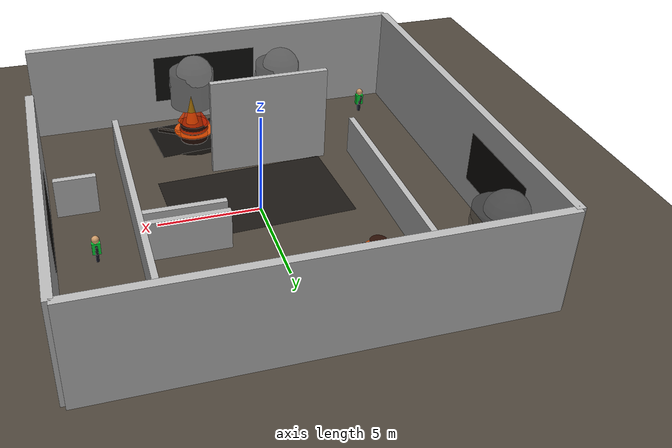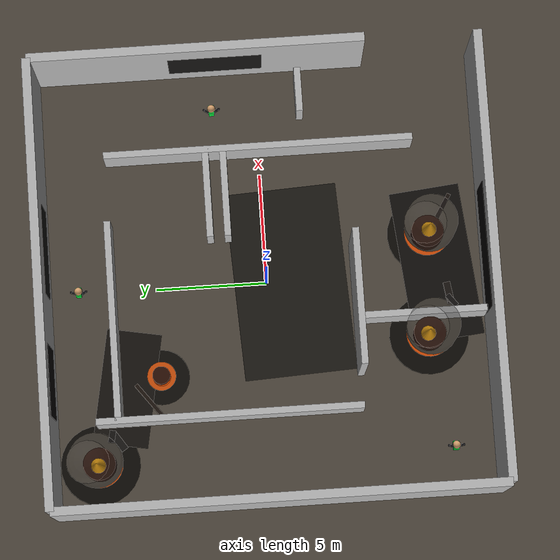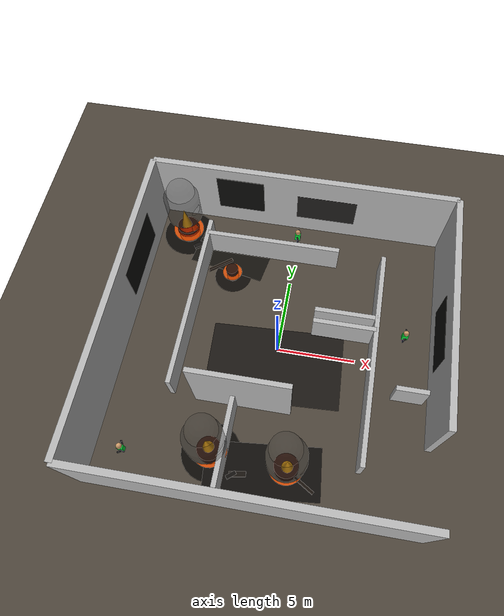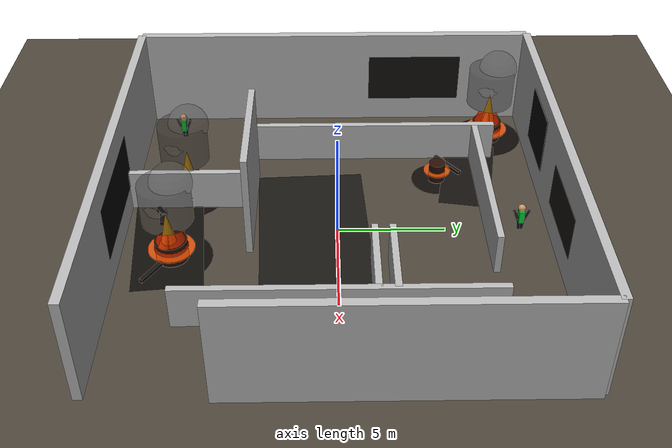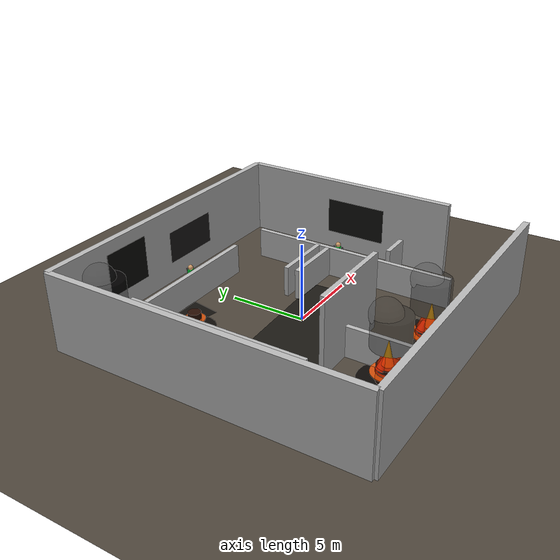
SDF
<?xml version="1.0" ?>
<sdf version="1.8">
    <world name="complex_maze_large">
        <physics name="1ms" type="ignored">
            <max_step_size>0.001</max_step_size>
            <real_time_factor>1.0</real_time_factor>
        </physics>

        <plugin name="gz::sim::systems::Physics" filename="gz-sim-physics-system"/>
        <plugin name="gz::sim::systems::UserCommands" filename="gz-sim-user-commands-system"/>
        <plugin name="gz::sim::systems::SceneBroadcaster" filename="gz-sim-scene-broadcaster-system"/>
        <plugin name="gz::sim::systems::ParticleEmitter" filename="gz-sim-particle-emitter-system"/>

        <plugin name="gz::sim::systems::Thermal" filename="gz-sim-thermal-system"/>

        <plugin name="gz::sim::systems::Sensors" filename="gz-sim-sensors-system">
            <render_engine>ogre2</render_engine>
        </plugin>
        <plugin name="gz::sim::systems::Imu" filename="gz-sim-imu-system"/>

        <light type="directional" name="sun">
            <pose>0 0 20 0 0 0</pose>
            <diffuse>0.55 0.42 0.32 1</diffuse>
            <specular>0.5 0.24 0.08 1</specular>
            <direction>-0.5 0.1 -0.9</direction>
        </light>

        <scene>
            <ambient>0.22 0.18 0.16 1</ambient>
            <background>0.08 0.07 0.06 1</background>
            <shadows>true</shadows>
        </scene>

        <model name="ground_plane">
            <static>true</static>
            <link name="link">
                <collision name="c">
                    <geometry>
                        <plane>
                            <normal>0 0 1</normal>
                        </plane>
                    </geometry>
                </collision>
                <visual name="v">
                    <geometry>
                        <plane>
                            <normal>0 0 1</normal>
                        </plane>
                    </geometry>
                    <material>
                        <ambient>0.18 0.16 0.14 1</ambient>
                        <diffuse>0.30 0.27 0.23 1</diffuse>
                    </material>
                </visual>
            </link>
        </model>

        <model name="border_N">
            <static>true</static>
            <pose>0 10 2.5 0 0 0</pose>
            <link name="l">
                <visual name="v">
                    <geometry>
                        <box>
                            <size>20 0.4 5</size>
                        </box>
                    </geometry>
                </visual>
                <collision name="c">
                    <geometry>
                        <box>
                            <size>20 0.4 5</size>
                        </box>
                    </geometry>
                </collision>
            </link>
        </model>

        <model name="border_S">
            <static>true</static>
            <pose>0 -10 2.5 0 0 0</pose>
            <link name="l">
                <visual name="v">
                    <geometry>
                        <box>
                            <size>20 0.4 5</size>
                        </box>
                    </geometry>
                </visual>
                <collision name="c">
                    <geometry>
                        <box>
                            <size>20 0.4 5</size>
                        </box>
                    </geometry>
                </collision>
            </link>
        </model>

        <model name="border_W">
            <static>true</static>
            <pose>-10 0 2.5 0 0 0</pose>
            <link name="l">
                <visual name="v">
                    <geometry>
                        <box>
                            <size>0.4 20 5</size>
                        </box>
                    </geometry>
                </visual>
                <collision name="c">
                    <geometry>
                        <box>
                            <size>0.4 20 5</size>
                        </box>
                    </geometry>
                </collision>
            </link>
        </model>

        <model name="border_E">
            <static>true</static>
            <pose>10 2.5 2.5 0 0 0</pose>
            <link name="l">
                <visual name="v">
                    <geometry>
                        <box>
                            <size>0.4 15 5</size>
                        </box>
                    </geometry>
                </visual>
                <collision name="c">
                    <geometry>
                        <box>
                            <size>0.4 15 5</size>
                        </box>
                    </geometry>
                </collision>
            </link>
        </model>

        <model name="wall_v1">
            <static>true</static>
            <pose>-6 2 1 0 0 0</pose>
            <link name="l">
                <visual name="v">
                    <geometry>
                        <box>
                            <size>0.3 12 2</size>
                        </box>
                    </geometry>
                </visual>
                <collision name="c">
                    <geometry>
                        <box>
                            <size>0.3 12 2</size>
                        </box>
                    </geometry>
                </collision>
            </link>
        </model>

        <model name="wall_v2">
            <static>true</static>
            <pose>-2 -7 1 0 0 0</pose>
            <link name="l">
                <visual name="v">
                    <geometry>
                        <box>
                            <size>0.3 6 2</size>
                        </box>
                    </geometry>
                </visual>
                <collision name="c">
                    <geometry>
                        <box>
                            <size>0.3 6 2</size>
                        </box>
                    </geometry>
                </collision>
            </link>
        </model>

        <model name="wall_v3">
            <static>true</static>
            <pose>6 0 1 0 0 0</pose>
            <link name="l">
                <visual name="v">
                    <geometry>
                        <box>
                            <size>0.3 14 2</size>
                        </box>
                    </geometry>
                </visual>
                <collision name="c">
                    <geometry>
                        <box>
                            <size>0.3 14 2</size>
                        </box>
                    </geometry>
                </collision>
            </link>
        </model>

        <model name="wall_h1">
            <static>true</static>
            <pose>-1.5 7 1 0 0 0</pose>
            <link name="l">
                <visual name="v">
                    <geometry>
                        <box>
                            <size>9 0.3 2</size>
                        </box>
                    </geometry>
                </visual>
                <collision name="c">
                    <geometry>
                        <box>
                            <size>9 0.3 2</size>
                        </box>
                    </geometry>
                </collision>
            </link>
        </model>

        <model name="wall_h2">
            <static>true</static>
            <pose>-1.5 -4 2.5 0 0 0</pose>
            <link name="l">
                <visual name="v">
                    <geometry>
                        <box>
                            <size>6 0.3 5</size>
                        </box>
                    </geometry>
                </visual>
                <collision name="c">
                    <geometry>
                        <box>
                            <size>6 0.3 5</size>
                        </box>
                    </geometry>
                </collision>
            </link>
        </model>

        <model name="wall_h3">
            <static>true</static>
            <pose>8.5 -2 1 0 0 0</pose>
            <link name="l">
                <visual name="v">
                    <geometry>
                        <box>
                            <size>2 0.3 2</size>
                        </box>
                    </geometry>
                </visual>
                <collision name="c">
                    <geometry>
                        <box>
                            <size>2 0.3 2</size>
                        </box>
                    </geometry>
                </collision>
            </link>
        </model>

        <model name="narrow_path_N">
            <static>true</static>
            <pose>4 2.4 1 0 0 0</pose>
            <link name="l">
                <visual name="v">
                    <geometry>
                        <box>
                            <size>4 0.3 2</size>
                        </box>
                    </geometry>
                </visual>
                <collision name="c">
                    <geometry>
                        <box>
                            <size>4 0.3 2</size>
                        </box>
                    </geometry>
                </collision>
            </link>
        </model>

        <model name="narrow_path_S">
            <static>true</static>
            <pose>4 1.6 1 0 0 0</pose>
            <link name="l">
                <visual name="v">
                    <geometry>
                        <box>
                            <size>4 0.3 2</size>
                        </box>
                    </geometry>
                </visual>
                <collision name="c">
                    <geometry>
                        <box>
                            <size>4 0.3 2</size>
                        </box>
                    </geometry>
                </collision>
            </link>
        </model>

        <model name="green_survivor_1">
            <static>true</static>
            <pose>-8 -8 0.5 0 0 0</pose>
            <link name="link">
                <visual name="head">
                    <pose>0 0 0.72 0 0 0</pose>
                    <geometry>
                        <sphere><radius>0.18</radius></sphere>
                    </geometry>
                    <material>
                        <ambient>0.74 0.52 0.34 1</ambient>
                        <diffuse>0.82 0.62 0.42 1</diffuse>
                    </material>
                </visual>
                <visual name="torso">
                    <pose>0 0 0.28 0 0 0</pose>
                    <geometry>
                        <box><size>0.38 0.24 0.58</size></box>
                    </geometry>
                    <material>
                        <ambient>0.02 0.65 0.18 1</ambient>
                        <diffuse>0.03 0.85 0.22 1</diffuse>
                    </material>
                </visual>
                <visual name="left_arm">
                    <pose>0 -0.24 0.30 0.35 0 0</pose>
                    <geometry>
                        <cylinder><radius>0.055</radius><length>0.58</length></cylinder>
                    </geometry>
                    <material>
                        <ambient>0.07 0.07 0.08 1</ambient>
                        <diffuse>0.11 0.11 0.12 1</diffuse>
                    </material>
                </visual>
                <visual name="right_arm">
                    <pose>0 0.24 0.30 -0.35 0 0</pose>
                    <geometry>
                        <cylinder><radius>0.055</radius><length>0.58</length></cylinder>
                    </geometry>
                    <material>
                        <ambient>0.07 0.07 0.08 1</ambient>
                        <diffuse>0.11 0.11 0.12 1</diffuse>
                    </material>
                </visual>
                <visual name="left_leg">
                    <pose>0 -0.09 -0.12 0.12 0 0</pose>
                    <geometry>
                        <cylinder><radius>0.07</radius><length>0.62</length></cylinder>
                    </geometry>
                    <material>
                        <ambient>0.05 0.06 0.09 1</ambient>
                        <diffuse>0.07 0.08 0.13 1</diffuse>
                    </material>
                </visual>
                <visual name="right_leg">
                    <pose>0 0.09 -0.12 -0.12 0 0</pose>
                    <geometry>
                        <cylinder><radius>0.07</radius><length>0.62</length></cylinder>
                    </geometry>
                    <material>
                        <ambient>0.05 0.06 0.09 1</ambient>
                        <diffuse>0.07 0.08 0.13 1</diffuse>
                    </material>
                </visual>
                <collision name="c">
                    <geometry>
                        <box><size>0.8 0.8 1.0</size></box>
                    </geometry>
                </collision>
            </link>
            <plugin filename="gz-sim-thermal-system" name="gz::sim::systems::Thermal"><temperature>310.0</temperature></plugin>
        </model>

        <model name="green_survivor_2">
            <static>true</static>
            <pose>0 8.5 0.5 0 0 0</pose>
            <link name="link">
                <visual name="head">
                    <pose>0 0 0.72 0 0 0</pose>
                    <geometry>
                        <sphere><radius>0.18</radius></sphere>
                    </geometry>
                    <material>
                        <ambient>0.74 0.52 0.34 1</ambient>
                        <diffuse>0.82 0.62 0.42 1</diffuse>
                    </material>
                </visual>
                <visual name="torso">
                    <pose>0 0 0.28 0 0 0</pose>
                    <geometry>
                        <box><size>0.38 0.24 0.58</size></box>
                    </geometry>
                    <material>
                        <ambient>0.02 0.65 0.18 1</ambient>
                        <diffuse>0.03 0.85 0.22 1</diffuse>
                    </material>
                </visual>
                <visual name="left_arm">
                    <pose>0 -0.24 0.30 0.35 0 0</pose>
                    <geometry>
                        <cylinder><radius>0.055</radius><length>0.58</length></cylinder>
                    </geometry>
                    <material>
                        <ambient>0.07 0.07 0.08 1</ambient>
                        <diffuse>0.11 0.11 0.12 1</diffuse>
                    </material>
                </visual>
                <visual name="right_arm">
                    <pose>0 0.24 0.30 -0.35 0 0</pose>
                    <geometry>
                        <cylinder><radius>0.055</radius><length>0.58</length></cylinder>
                    </geometry>
                    <material>
                        <ambient>0.07 0.07 0.08 1</ambient>
                        <diffuse>0.11 0.11 0.12 1</diffuse>
                    </material>
                </visual>
                <visual name="left_leg">
                    <pose>0 -0.09 -0.12 0.12 0 0</pose>
                    <geometry>
                        <cylinder><radius>0.07</radius><length>0.62</length></cylinder>
                    </geometry>
                    <material>
                        <ambient>0.05 0.06 0.09 1</ambient>
                        <diffuse>0.07 0.08 0.13 1</diffuse>
                    </material>
                </visual>
                <visual name="right_leg">
                    <pose>0 0.09 -0.12 -0.12 0 0</pose>
                    <geometry>
                        <cylinder><radius>0.07</radius><length>0.62</length></cylinder>
                    </geometry>
                    <material>
                        <ambient>0.05 0.06 0.09 1</ambient>
                        <diffuse>0.07 0.08 0.13 1</diffuse>
                    </material>
                </visual>
                <collision name="c">
                    <geometry>
                        <box><size>0.8 0.8 1.0</size></box>
                    </geometry>
                </collision>
            </link>
            <plugin filename="gz-sim-thermal-system" name="gz::sim::systems::Thermal"><temperature>310.0</temperature></plugin>
        </model>

        <model name="green_survivor_3">
            <static>true</static>
            <pose>8 2 0.5 0 0 0</pose>
            <link name="link">
                <visual name="head">
                    <pose>0 0 0.72 0 0 0</pose>
                    <geometry>
                        <sphere><radius>0.18</radius></sphere>
                    </geometry>
                    <material>
                        <ambient>0.74 0.52 0.34 1</ambient>
                        <diffuse>0.82 0.62 0.42 1</diffuse>
                    </material>
                </visual>
                <visual name="torso">
                    <pose>0 0 0.28 0 0 0</pose>
                    <geometry>
                        <box><size>0.38 0.24 0.58</size></box>
                    </geometry>
                    <material>
                        <ambient>0.02 0.65 0.18 1</ambient>
                        <diffuse>0.03 0.85 0.22 1</diffuse>
                    </material>
                </visual>
                <visual name="left_arm">
                    <pose>0 -0.24 0.30 0.35 0 0</pose>
                    <geometry>
                        <cylinder><radius>0.055</radius><length>0.58</length></cylinder>
                    </geometry>
                    <material>
                        <ambient>0.07 0.07 0.08 1</ambient>
                        <diffuse>0.11 0.11 0.12 1</diffuse>
                    </material>
                </visual>
                <visual name="right_arm">
                    <pose>0 0.24 0.30 -0.35 0 0</pose>
                    <geometry>
                        <cylinder><radius>0.055</radius><length>0.58</length></cylinder>
                    </geometry>
                    <material>
                        <ambient>0.07 0.07 0.08 1</ambient>
                        <diffuse>0.11 0.11 0.12 1</diffuse>
                    </material>
                </visual>
                <visual name="left_leg">
                    <pose>0 -0.09 -0.12 0.12 0 0</pose>
                    <geometry>
                        <cylinder><radius>0.07</radius><length>0.62</length></cylinder>
                    </geometry>
                    <material>
                        <ambient>0.05 0.06 0.09 1</ambient>
                        <diffuse>0.07 0.08 0.13 1</diffuse>
                    </material>
                </visual>
                <visual name="right_leg">
                    <pose>0 0.09 -0.12 -0.12 0 0</pose>
                    <geometry>
                        <cylinder><radius>0.07</radius><length>0.62</length></cylinder>
                    </geometry>
                    <material>
                        <ambient>0.05 0.06 0.09 1</ambient>
                        <diffuse>0.07 0.08 0.13 1</diffuse>
                    </material>
                </visual>
                <collision name="c">
                    <geometry>
                        <box><size>0.8 0.8 1.0</size></box>
                    </geometry>
                </collision>
            </link>
            <plugin filename="gz-sim-thermal-system" name="gz::sim::systems::Thermal"><temperature>310.0</temperature></plugin>
        </model>

        <model name="red_danger1">
            <static>true</static>
            <pose>-4 5 0.5 0 0 0</pose>
            <link name="link">
                <visual name="v">
                    <geometry>
                        <cylinder>
                            <radius>0.4</radius>
                            <length>1.0</length>
                        </cylinder>
                    </geometry>
                    <material>
                        <ambient>0.08 0.025 0.010 1</ambient>
                        <diffuse>0.16 0.055 0.018 1</diffuse>
                        <emissive>0.28 0.060 0.015 1</emissive>
                    </material>
                </visual>
                <visual name="ember_glow">
                    <pose>0 0 0.05 0 0 0</pose>
                    <geometry>
                        <cylinder>
                            <radius>0.65</radius>
                            <length>0.06</length>
                        </cylinder>
                    </geometry>
                    <material>
                        <ambient>1 0.26 0.02 0.75</ambient>
                        <diffuse>1 0.36 0.02 0.75</diffuse>
                        <emissive>1 0.24 0.02 1</emissive>
                    </material>
                </visual>
                <visual name="ember_hotspot_a">
                    <pose>0.18 0.10 0.18 0 0 0</pose>
                    <geometry>
                        <sphere>
                            <radius>0.12</radius>
                        </sphere>
                    </geometry>
                    <material>
                        <ambient>1 0.42 0.035 1</ambient>
                        <diffuse>1 0.32 0.020 1</diffuse>
                        <emissive>1 0.22 0.010 1</emissive>
                    </material>
                </visual>
                <visual name="ember_hotspot_b">
                    <pose>-0.20 -0.08 0.16 0 0 0</pose>
                    <geometry>
                        <sphere>
                            <radius>0.10</radius>
                        </sphere>
                    </geometry>
                    <material>
                        <ambient>1 0.24 0.015 1</ambient>
                        <diffuse>1 0.18 0.010 1</diffuse>
                        <emissive>1 0.10 0.005 1</emissive>
                    </material>
                </visual>
                <collision name="c">
                    <geometry>
                        <cylinder>
                            <radius>0.4</radius>
                            <length>1.0</length>
                        </cylinder>
                    </geometry>
                </collision>
            </link>
            <plugin filename="gz-sim-thermal-system" name="gz::sim::systems::Thermal"><temperature>1200.0</temperature></plugin>
        </model>

        <model name="red_danger2">
            <static>true</static>
            <pose>-7.8 8 0.5 0 0 0</pose>
            <link name="link">
                <visual name="v">
                    <geometry>
                        <cylinder>
                            <radius>0.73</radius>
                            <length>1.0</length>
                        </cylinder>
                    </geometry>
                    <material>
                        <ambient>0.08 0.025 0.010 1</ambient>
                        <diffuse>0.16 0.055 0.018 1</diffuse>
                        <emissive>0.28 0.060 0.015 1</emissive>
                    </material>
                </visual>
                <visual name="ember_glow">
                    <pose>0 0 0.05 0 0 0</pose>
                    <geometry>
                        <cylinder>
                            <radius>1.05</radius>
                            <length>0.06</length>
                        </cylinder>
                    </geometry>
                    <material>
                        <ambient>1 0.24 0.02 0.78</ambient>
                        <diffuse>1 0.35 0.02 0.78</diffuse>
                        <emissive>1 0.22 0.02 1</emissive>
                    </material>
                </visual>
                <visual name="ember_hotspot_a">
                    <pose>0.18 0.10 0.18 0 0 0</pose>
                    <geometry>
                        <sphere>
                            <radius>0.12</radius>
                        </sphere>
                    </geometry>
                    <material>
                        <ambient>1 0.42 0.035 1</ambient>
                        <diffuse>1 0.32 0.020 1</diffuse>
                        <emissive>1 0.22 0.010 1</emissive>
                    </material>
                </visual>
                <visual name="ember_hotspot_b">
                    <pose>-0.20 -0.08 0.16 0 0 0</pose>
                    <geometry>
                        <sphere>
                            <radius>0.10</radius>
                        </sphere>
                    </geometry>
                    <material>
                        <ambient>1 0.24 0.015 1</ambient>
                        <diffuse>1 0.18 0.010 1</diffuse>
                        <emissive>1 0.10 0.005 1</emissive>
                    </material>
                </visual>
                <visual name="flame_outer">
                    <transparency>0.18</transparency>
                    <pose>0 0 1.25 0 0 0</pose>
                    <geometry>
                        <cone>
                            <radius>0.78</radius>
                            <length>2.2</length>
                        </cone>
                    </geometry>
                    <material>
                        <ambient>1 0.16 0.01 0.84</ambient>
                        <diffuse>1 0.24 0.02 0.84</diffuse>
                        <emissive>1 0.14 0.01 1</emissive>
                    </material>
                </visual>
                <visual name="flame_inner">
                    <transparency>0.05</transparency>
                    <pose>-0.08 0.04 1.22 0 0 0</pose>
                    <geometry>
                        <cone>
                            <radius>0.36</radius>
                            <length>1.65</length>
                        </cone>
                    </geometry>
                    <material>
                        <ambient>1 0.82 0.10 0.92</ambient>
                        <diffuse>1 0.68 0.04 0.92</diffuse>
                        <emissive>1 0.58 0.04 1</emissive>
                    </material>
                </visual>
                <visual name="flame_left">
                    <transparency>0.12</transparency>
                    <pose>-0.33 0.12 1.02 0.18 0.35 0</pose>
                    <geometry>
                        <cone>
                            <radius>0.30</radius>
                            <length>1.35</length>
                        </cone>
                    </geometry>
                    <material>
                        <ambient>1 0.10 0.01 0.95</ambient>
                        <diffuse>1 0.20 0.02 0.95</diffuse>
                        <emissive>1 0.12 0.01 1</emissive>
                    </material>
                </visual>
                <visual name="flame_right">
                    <transparency>0.12</transparency>
                    <pose>0.36 -0.10 1.08 -0.18 -0.30 0</pose>
                    <geometry>
                        <cone>
                            <radius>0.27</radius>
                            <length>1.25</length>
                        </cone>
                    </geometry>
                    <material>
                        <ambient>1 0.36 0.02 0.95</ambient>
                        <diffuse>1 0.28 0.02 0.95</diffuse>
                        <emissive>1 0.18 0.01 1</emissive>
                    </material>
                </visual>
                <visual name="flame_core_white">
                    <transparency>0.08</transparency>
                    <pose>0.02 0.02 0.78 0 0 0</pose>
                    <geometry>
                        <cone>
                            <radius>0.16</radius>
                            <length>1.05</length>
                        </cone>
                    </geometry>
                    <material>
                        <ambient>1 0.95 0.42 0.96</ambient>
                        <diffuse>1 0.88 0.25 0.96</diffuse>
                        <emissive>1 0.78 0.12 1</emissive>
                    </material>
                </visual>
                <visual name="flame_tip">
                    <transparency>0.16</transparency>
                    <pose>-0.05 0.03 1.58 0.08 -0.18 0</pose>
                    <geometry>
                        <cone>
                            <radius>0.18</radius>
                            <length>0.85</length>
                        </cone>
                    </geometry>
                    <material>
                        <ambient>1 0.48 0.03 0.88</ambient>
                        <diffuse>1 0.34 0.02 0.88</diffuse>
                        <emissive>1 0.22 0.01 1</emissive>
                    </material>
                </visual>
                <visual name="flame_lip_front">
                    <transparency>0.18</transparency>
                    <pose>0.16 -0.20 0.58 -0.42 0.18 0</pose>
                    <geometry>
                        <cone>
                            <radius>0.18</radius>
                            <length>0.78</length>
                        </cone>
                    </geometry>
                    <material>
                        <ambient>1 0.20 0.015 0.86</ambient>
                        <diffuse>1 0.16 0.010 0.86</diffuse>
                        <emissive>1 0.10 0.006 1</emissive>
                    </material>
                </visual>
                <visual name="smoke_column">
                    <transparency>0.70</transparency>
                    <pose>0 0 2.65 0 0 0</pose>
                    <geometry>
                        <cylinder>
                            <radius>1.15</radius>
                            <length>1.9</length>
                        </cylinder>
                    </geometry>
                    <material>
                        <ambient>0.055 0.055 0.055 1</ambient>
                        <diffuse>0.085 0.085 0.085 1</diffuse>
                    </material>
                </visual>
                <visual name="smoke_puff_low">
                    <transparency>0.72</transparency>
                    <pose>-0.22 0.16 2.12 0 0 0</pose>
                    <geometry>
                        <sphere>
                            <radius>0.68</radius>
                        </sphere>
                    </geometry>
                    <material>
                        <ambient>0.12 0.12 0.12 1</ambient>
                        <diffuse>0.16 0.16 0.16 1</diffuse>
                    </material>
                </visual>
                <visual name="smoke_puff_mid">
                    <transparency>0.76</transparency>
                    <pose>0.36 -0.12 2.85 0 0 0</pose>
                    <geometry>
                        <sphere>
                            <radius>0.82</radius>
                        </sphere>
                    </geometry>
                    <material>
                        <ambient>0.09 0.09 0.09 1</ambient>
                        <diffuse>0.13 0.13 0.13 1</diffuse>
                    </material>
                </visual>
                <visual name="smoke_puff_high">
                    <transparency>0.80</transparency>
                    <pose>-0.10 0.30 3.55 0 0 0</pose>
                    <geometry>
                        <sphere>
                            <radius>0.95</radius>
                        </sphere>
                    </geometry>
                    <material>
                        <ambient>0.15 0.15 0.15 1</ambient>
                        <diffuse>0.20 0.20 0.20 1</diffuse>
                    </material>
                </visual>
                <particle_emitter name="smoke_plume" type="box">
                    <pose>0 0 1.75 0 -1.5707 0</pose>
                    <emitting>true</emitting>
                    <size>1.15 1.15 0.38</size>
                    <particle_size>1.15 1.15 1.15</particle_size>
                    <lifetime>10.5</lifetime>
                    <min_velocity>0.16</min_velocity>
                    <max_velocity>0.78</max_velocity>
                    <scale_rate>0.58</scale_rate>
                    <rate>20</rate>
                    <material>
                        <diffuse>0.7 0.7 0.7 1</diffuse>
                        <specular>0.2 0.2 0.2 1</specular>
                        <pbr>
                            <metal>
                                <albedo_map>/home/seoeunbi/ros2/Track-Be/maps/materials/textures/smoke_particle.png</albedo_map>
                            </metal>
                        </pbr>
                    </material>
                    <color_range_image>/home/seoeunbi/ros2/Track-Be/maps/materials/textures/smoke_colors.png</color_range_image>
                    <particle_scatter_ratio>0.98</particle_scatter_ratio>
                </particle_emitter>
                <particle_emitter name="smoke_canopy" type="ellipsoid">
                    <pose>0.2 -0.1 3.25 0 -1.5707 0</pose>
                    <emitting>true</emitting>
                    <size>2.2 2.2 0.85</size>
                    <particle_size>1.5 1.5 1.5</particle_size>
                    <lifetime>13.0</lifetime>
                    <min_velocity>0.05</min_velocity>
                    <max_velocity>0.30</max_velocity>
                    <scale_rate>0.48</scale_rate>
                    <rate>8</rate>
                    <material>
                        <diffuse>0.7 0.7 0.7 1</diffuse>
                        <specular>0.2 0.2 0.2 1</specular>
                        <pbr>
                            <metal>
                                <albedo_map>/home/seoeunbi/ros2/Track-Be/maps/materials/textures/smoke_particle.png</albedo_map>
                            </metal>
                        </pbr>
                    </material>
                    <color_range_image>/home/seoeunbi/ros2/Track-Be/maps/materials/textures/smoke_colors.png</color_range_image>
                    <particle_scatter_ratio>0.94</particle_scatter_ratio>
                </particle_emitter>
                <collision name="c"><geometry><cylinder><radius>0.73</radius><length>1.0</length></cylinder></geometry></collision>
            </link>
            <plugin filename="gz-sim-thermal-system" name="gz::sim::systems::Thermal"><temperature>1200.0</temperature></plugin>
        </model>

        <model name="red_danger3">
            <static>true</static><pose>1.77 -7.44 0.5 0 0 0</pose>
            <link name="link">
                <visual name="v">
                    <geometry>
                        <cylinder>
                            <radius>0.73</radius>
                            <length>1.0</length>
                        </cylinder>
                    </geometry>
                    <material>
                        <ambient>0.08 0.025 0.010 1</ambient>
                        <diffuse>0.16 0.055 0.018 1</diffuse>
                        <emissive>0.28 0.060 0.015 1</emissive>
                    </material>
                </visual>
                <visual name="ember_glow">
                    <pose>0 0 0.05 0 0 0</pose>
                    <geometry>
                        <cylinder>
                            <radius>1.05</radius>
                            <length>0.06</length>
                        </cylinder>
                    </geometry>
                    <material>
                        <ambient>1 0.24 0.02 0.78</ambient>
                        <diffuse>1 0.35 0.02 0.78</diffuse>
                        <emissive>1 0.22 0.02 1</emissive>
                    </material>
                </visual>
                <visual name="ember_hotspot_a">
                    <pose>0.18 0.10 0.18 0 0 0</pose>
                    <geometry>
                        <sphere>
                            <radius>0.12</radius>
                        </sphere>
                    </geometry>
                    <material>
                        <ambient>1 0.42 0.035 1</ambient>
                        <diffuse>1 0.32 0.020 1</diffuse>
                        <emissive>1 0.22 0.010 1</emissive>
                    </material>
                </visual>
                <visual name="ember_hotspot_b">
                    <pose>-0.20 -0.08 0.16 0 0 0</pose>
                    <geometry>
                        <sphere>
                            <radius>0.10</radius>
                        </sphere>
                    </geometry>
                    <material>
                        <ambient>1 0.24 0.015 1</ambient>
                        <diffuse>1 0.18 0.010 1</diffuse>
                        <emissive>1 0.10 0.005 1</emissive>
                    </material>
                </visual>
                <visual name="flame_outer">
                    <transparency>0.18</transparency>
                    <pose>0 0 1.25 0 0 0</pose>
                    <geometry>
                        <cone>
                            <radius>0.78</radius>
                            <length>2.2</length>
                        </cone>
                    </geometry>
                    <material>
                        <ambient>1 0.16 0.01 0.84</ambient>
                        <diffuse>1 0.24 0.02 0.84</diffuse>
                        <emissive>1 0.14 0.01 1</emissive>
                    </material>
                </visual>
                <visual name="flame_inner">
                    <transparency>0.05</transparency>
                    <pose>0.07 -0.06 1.22 0 0 0</pose>
                    <geometry>
                        <cone>
                            <radius>0.36</radius>
                            <length>1.65</length>
                        </cone>
                    </geometry>
                    <material>
                        <ambient>1 0.82 0.10 0.92</ambient>
                        <diffuse>1 0.68 0.04 0.92</diffuse>
                        <emissive>1 0.58 0.04 1</emissive>
                    </material>
                </visual>
                <visual name="flame_left">
                    <transparency>0.12</transparency>
                    <pose>-0.33 0.12 1.02 0.18 0.35 0</pose>
                    <geometry>
                        <cone>
                            <radius>0.30</radius>
                            <length>1.35</length>
                        </cone>
                    </geometry>
                    <material>
                        <ambient>1 0.10 0.01 0.95</ambient>
                        <diffuse>1 0.20 0.02 0.95</diffuse>
                        <emissive>1 0.12 0.01 1</emissive>
                    </material>
                </visual>
                <visual name="flame_right">
                    <transparency>0.12</transparency>
                    <pose>0.36 -0.10 1.08 -0.18 -0.30 0</pose>
                    <geometry>
                        <cone>
                            <radius>0.27</radius>
                            <length>1.25</length>
                        </cone>
                    </geometry>
                    <material>
                        <ambient>1 0.36 0.02 0.95</ambient>
                        <diffuse>1 0.28 0.02 0.95</diffuse>
                        <emissive>1 0.18 0.01 1</emissive>
                    </material>
                </visual>
                <visual name="flame_core_white">
                    <transparency>0.08</transparency>
                    <pose>0.02 0.02 0.78 0 0 0</pose>
                    <geometry>
                        <cone>
                            <radius>0.16</radius>
                            <length>1.05</length>
                        </cone>
                    </geometry>
                    <material>
                        <ambient>1 0.95 0.42 0.96</ambient>
                        <diffuse>1 0.88 0.25 0.96</diffuse>
                        <emissive>1 0.78 0.12 1</emissive>
                    </material>
                </visual>
                <visual name="flame_tip">
                    <transparency>0.16</transparency>
                    <pose>-0.05 0.03 1.58 0.08 -0.18 0</pose>
                    <geometry>
                        <cone>
                            <radius>0.18</radius>
                            <length>0.85</length>
                        </cone>
                    </geometry>
                    <material>
                        <ambient>1 0.48 0.03 0.88</ambient>
                        <diffuse>1 0.34 0.02 0.88</diffuse>
                        <emissive>1 0.22 0.01 1</emissive>
                    </material>
                </visual>
                <visual name="flame_lip_front">
                    <transparency>0.18</transparency>
                    <pose>0.16 -0.20 0.58 -0.42 0.18 0</pose>
                    <geometry>
                        <cone>
                            <radius>0.18</radius>
                            <length>0.78</length>
                        </cone>
                    </geometry>
                    <material>
                        <ambient>1 0.20 0.015 0.86</ambient>
                        <diffuse>1 0.16 0.010 0.86</diffuse>
                        <emissive>1 0.10 0.006 1</emissive>
                    </material>
                </visual>
                <visual name="smoke_column">
                    <transparency>0.70</transparency>
                    <pose>0 0 2.65 0 0 0</pose>
                    <geometry>
                        <cylinder>
                            <radius>1.15</radius>
                            <length>1.9</length>
                        </cylinder>
                    </geometry>
                    <material>
                        <ambient>0.055 0.055 0.055 1</ambient>
                        <diffuse>0.085 0.085 0.085 1</diffuse>
                    </material>
                </visual>
                <visual name="smoke_puff_low">
                    <transparency>0.72</transparency>
                    <pose>-0.22 0.16 2.12 0 0 0</pose>
                    <geometry>
                        <sphere>
                            <radius>0.68</radius>
                        </sphere>
                    </geometry>
                    <material>
                        <ambient>0.12 0.12 0.12 1</ambient>
                        <diffuse>0.16 0.16 0.16 1</diffuse>
                    </material>
                </visual>
                <visual name="smoke_puff_mid">
                    <transparency>0.76</transparency>
                    <pose>0.36 -0.12 2.85 0 0 0</pose>
                    <geometry>
                        <sphere>
                            <radius>0.82</radius>
                        </sphere>
                    </geometry>
                    <material>
                        <ambient>0.09 0.09 0.09 1</ambient>
                        <diffuse>0.13 0.13 0.13 1</diffuse>
                    </material>
                </visual>
                <visual name="smoke_puff_high">
                    <transparency>0.80</transparency>
                    <pose>-0.10 0.30 3.55 0 0 0</pose>
                    <geometry>
                        <sphere>
                            <radius>0.95</radius>
                        </sphere>
                    </geometry>
                    <material>
                        <ambient>0.15 0.15 0.15 1</ambient>
                        <diffuse>0.20 0.20 0.20 1</diffuse>
                    </material>
                </visual>
                <particle_emitter name="smoke_plume" type="box">
                    <pose>0 0 1.75 0 -1.5707 0</pose>
                    <emitting>true</emitting>
                    <size>1.15 1.15 0.38</size>
                    <particle_size>1.15 1.15 1.15</particle_size>
                    <lifetime>10.5</lifetime>
                    <min_velocity>0.16</min_velocity>
                    <max_velocity>0.78</max_velocity>
                    <scale_rate>0.58</scale_rate>
                    <rate>20</rate>
                    <material>
                        <diffuse>0.7 0.7 0.7 1</diffuse>
                        <specular>0.2 0.2 0.2 1</specular>
                        <pbr>
                            <metal>
                                <albedo_map>/home/seoeunbi/ros2/Track-Be/maps/materials/textures/smoke_particle.png</albedo_map>
                            </metal>
                        </pbr>
                    </material>
                    <color_range_image>/home/seoeunbi/ros2/Track-Be/maps/materials/textures/smoke_colors.png</color_range_image>
                    <particle_scatter_ratio>0.98</particle_scatter_ratio>
                </particle_emitter>
                <particle_emitter name="smoke_canopy" type="ellipsoid">
                    <pose>0.2 -0.1 3.25 0 -1.5707 0</pose>
                    <emitting>true</emitting>
                    <size>2.2 2.2 0.85</size>
                    <particle_size>1.5 1.5 1.5</particle_size>
                    <lifetime>13.0</lifetime>
                    <min_velocity>0.05</min_velocity>
                    <max_velocity>0.30</max_velocity>
                    <scale_rate>0.48</scale_rate>
                    <rate>8</rate>
                    <material>
                        <diffuse>0.7 0.7 0.7 1</diffuse>
                        <specular>0.2 0.2 0.2 1</specular>
                        <pbr>
                            <metal>
                                <albedo_map>/home/seoeunbi/ros2/Track-Be/maps/materials/textures/smoke_particle.png</albedo_map>
                            </metal>
                        </pbr>
                    </material>
                    <color_range_image>/home/seoeunbi/ros2/Track-Be/maps/materials/textures/smoke_colors.png</color_range_image>
                    <particle_scatter_ratio>0.94</particle_scatter_ratio>
                </particle_emitter>
                <collision name="c"><geometry><cylinder><radius>0.73</radius><length>1.0</length></cylinder></geometry></collision>
            </link>
            <plugin filename="gz-sim-thermal-system" name="gz::sim::systems::Thermal"><temperature>1200.0</temperature></plugin>
        </model>

        <model name="red_danger4">
            <static>true</static><pose>-2.85 -7.21 0.5 0 0 0</pose>
            <link name="link">
                <visual name="v">
                    <geometry>
                        <cylinder>
                            <radius>0.73</radius>
                            <length>1.0</length>
                        </cylinder>
                    </geometry>
                    <material>
                        <ambient>0.08 0.025 0.010 1</ambient>
                        <diffuse>0.16 0.055 0.018 1</diffuse>
                        <emissive>0.28 0.060 0.015 1</emissive>
                    </material>
                </visual>
                <visual name="ember_glow">
                    <pose>0 0 0.05 0 0 0</pose>
                    <geometry>
                        <cylinder>
                            <radius>1.05</radius>
                            <length>0.06</length>
                        </cylinder>
                    </geometry>
                    <material>
                        <ambient>1 0.24 0.02 0.78</ambient>
                        <diffuse>1 0.35 0.02 0.78</diffuse>
                        <emissive>1 0.22 0.02 1</emissive>
                    </material>
                </visual>
                <visual name="ember_hotspot_a">
                    <pose>0.18 0.10 0.18 0 0 0</pose>
                    <geometry>
                        <sphere>
                            <radius>0.12</radius>
                        </sphere>
                    </geometry>
                    <material>
                        <ambient>1 0.42 0.035 1</ambient>
                        <diffuse>1 0.32 0.020 1</diffuse>
                        <emissive>1 0.22 0.010 1</emissive>
                    </material>
                </visual>
                <visual name="ember_hotspot_b">
                    <pose>-0.20 -0.08 0.16 0 0 0</pose>
                    <geometry>
                        <sphere>
                            <radius>0.10</radius>
                        </sphere>
                    </geometry>
                    <material>
                        <ambient>1 0.24 0.015 1</ambient>
                        <diffuse>1 0.18 0.010 1</diffuse>
                        <emissive>1 0.10 0.005 1</emissive>
                    </material>
                </visual>
                <visual name="flame_outer">
                    <transparency>0.18</transparency>
                    <pose>0 0 1.25 0 0 0</pose>
                    <geometry>
                        <cone>
                            <radius>0.78</radius>
                            <length>2.2</length>
                        </cone>
                    </geometry>
                    <material>
                        <ambient>1 0.16 0.01 0.84</ambient>
                        <diffuse>1 0.24 0.02 0.84</diffuse>
                        <emissive>1 0.14 0.01 1</emissive>
                    </material>
                </visual>
                <visual name="flame_inner">
                    <transparency>0.05</transparency>
                    <pose>-0.04 0.08 1.22 0 0 0</pose>
                    <geometry>
                        <cone>
                            <radius>0.36</radius>
                            <length>1.65</length>
                        </cone>
                    </geometry>
                    <material>
                        <ambient>1 0.82 0.10 0.92</ambient>
                        <diffuse>1 0.68 0.04 0.92</diffuse>
                        <emissive>1 0.58 0.04 1</emissive>
                    </material>
                </visual>
                <visual name="flame_left">
                    <transparency>0.12</transparency>
                    <pose>-0.33 0.12 1.02 0.18 0.35 0</pose>
                    <geometry>
                        <cone>
                            <radius>0.30</radius>
                            <length>1.35</length>
                        </cone>
                    </geometry>
                    <material>
                        <ambient>1 0.10 0.01 0.95</ambient>
                        <diffuse>1 0.20 0.02 0.95</diffuse>
                        <emissive>1 0.12 0.01 1</emissive>
                    </material>
                </visual>
                <visual name="flame_right">
                    <transparency>0.12</transparency>
                    <pose>0.36 -0.10 1.08 -0.18 -0.30 0</pose>
                    <geometry>
                        <cone>
                            <radius>0.27</radius>
                            <length>1.25</length>
                        </cone>
                    </geometry>
                    <material>
                        <ambient>1 0.36 0.02 0.95</ambient>
                        <diffuse>1 0.28 0.02 0.95</diffuse>
                        <emissive>1 0.18 0.01 1</emissive>
                    </material>
                </visual>
                <visual name="flame_core_white">
                    <transparency>0.08</transparency>
                    <pose>0.02 0.02 0.78 0 0 0</pose>
                    <geometry>
                        <cone>
                            <radius>0.16</radius>
                            <length>1.05</length>
                        </cone>
                    </geometry>
                    <material>
                        <ambient>1 0.95 0.42 0.96</ambient>
                        <diffuse>1 0.88 0.25 0.96</diffuse>
                        <emissive>1 0.78 0.12 1</emissive>
                    </material>
                </visual>
                <visual name="flame_tip">
                    <transparency>0.16</transparency>
                    <pose>-0.05 0.03 1.58 0.08 -0.18 0</pose>
                    <geometry>
                        <cone>
                            <radius>0.18</radius>
                            <length>0.85</length>
                        </cone>
                    </geometry>
                    <material>
                        <ambient>1 0.48 0.03 0.88</ambient>
                        <diffuse>1 0.34 0.02 0.88</diffuse>
                        <emissive>1 0.22 0.01 1</emissive>
                    </material>
                </visual>
                <visual name="flame_lip_front">
                    <transparency>0.18</transparency>
                    <pose>0.16 -0.20 0.58 -0.42 0.18 0</pose>
                    <geometry>
                        <cone>
                            <radius>0.18</radius>
                            <length>0.78</length>
                        </cone>
                    </geometry>
                    <material>
                        <ambient>1 0.20 0.015 0.86</ambient>
                        <diffuse>1 0.16 0.010 0.86</diffuse>
                        <emissive>1 0.10 0.006 1</emissive>
                    </material>
                </visual>
                <visual name="smoke_column">
                    <transparency>0.70</transparency>
                    <pose>0 0 2.65 0 0 0</pose>
                    <geometry>
                        <cylinder>
                            <radius>1.15</radius>
                            <length>1.9</length>
                        </cylinder>
                    </geometry>
                    <material>
                        <ambient>0.055 0.055 0.055 1</ambient>
                        <diffuse>0.085 0.085 0.085 1</diffuse>
                    </material>
                </visual>
                <visual name="smoke_puff_low">
                    <transparency>0.72</transparency>
                    <pose>-0.22 0.16 2.12 0 0 0</pose>
                    <geometry>
                        <sphere>
                            <radius>0.68</radius>
                        </sphere>
                    </geometry>
                    <material>
                        <ambient>0.12 0.12 0.12 1</ambient>
                        <diffuse>0.16 0.16 0.16 1</diffuse>
                    </material>
                </visual>
                <visual name="smoke_puff_mid">
                    <transparency>0.76</transparency>
                    <pose>0.36 -0.12 2.85 0 0 0</pose>
                    <geometry>
                        <sphere>
                            <radius>0.82</radius>
                        </sphere>
                    </geometry>
                    <material>
                        <ambient>0.09 0.09 0.09 1</ambient>
                        <diffuse>0.13 0.13 0.13 1</diffuse>
                    </material>
                </visual>
                <visual name="smoke_puff_high">
                    <transparency>0.80</transparency>
                    <pose>-0.10 0.30 3.55 0 0 0</pose>
                    <geometry>
                        <sphere>
                            <radius>0.95</radius>
                        </sphere>
                    </geometry>
                    <material>
                        <ambient>0.15 0.15 0.15 1</ambient>
                        <diffuse>0.20 0.20 0.20 1</diffuse>
                    </material>
                </visual>
                <particle_emitter name="smoke_plume" type="box">
                    <pose>0 0 1.75 0 -1.5707 0</pose>
                    <emitting>true</emitting>
                    <size>1.15 1.15 0.38</size>
                    <particle_size>1.15 1.15 1.15</particle_size>
                    <lifetime>10.5</lifetime>
                    <min_velocity>0.16</min_velocity>
                    <max_velocity>0.78</max_velocity>
                    <scale_rate>0.58</scale_rate>
                    <rate>20</rate>
                    <material>
                        <diffuse>0.7 0.7 0.7 1</diffuse>
                        <specular>0.2 0.2 0.2 1</specular>
                        <pbr>
                            <metal>
                                <albedo_map>/home/seoeunbi/ros2/Track-Be/maps/materials/textures/smoke_particle.png</albedo_map>
                            </metal>
                        </pbr>
                    </material>
                    <color_range_image>/home/seoeunbi/ros2/Track-Be/maps/materials/textures/smoke_colors.png</color_range_image>
                    <particle_scatter_ratio>0.98</particle_scatter_ratio>
                </particle_emitter>
                <particle_emitter name="smoke_canopy" type="ellipsoid">
                    <pose>0.2 -0.1 3.25 0 -1.5707 0</pose>
                    <emitting>true</emitting>
                    <size>2.2 2.2 0.85</size>
                    <particle_size>1.5 1.5 1.5</particle_size>
                    <lifetime>13.0</lifetime>
                    <min_velocity>0.05</min_velocity>
                    <max_velocity>0.30</max_velocity>
                    <scale_rate>0.48</scale_rate>
                    <rate>8</rate>
                    <material>
                        <diffuse>0.7 0.7 0.7 1</diffuse>
                        <specular>0.2 0.2 0.2 1</specular>
                        <pbr>
                            <metal>
                                <albedo_map>/home/seoeunbi/ros2/Track-Be/maps/materials/textures/smoke_particle.png</albedo_map>
                            </metal>
                        </pbr>
                    </material>
                    <color_range_image>/home/seoeunbi/ros2/Track-Be/maps/materials/textures/smoke_colors.png</color_range_image>
                    <particle_scatter_ratio>0.94</particle_scatter_ratio>
                </particle_emitter>
                <collision name="c"><geometry><cylinder><radius>0.73</radius><length>1.0</length></cylinder></geometry></collision>
            </link>
            <plugin filename="gz-sim-thermal-system" name="gz::sim::systems::Thermal"><temperature>1200.0</temperature></plugin>
        </model>

        <light type="point" name="blaze_glow_1"><pose>-4 5 2.0 0 0 0</pose><diffuse>1 0.42 0.10 1</diffuse><specular>1 0.18 0.02 1</specular><attenuation><range>9</range><constant>0.26</constant><linear>0.08</linear><quadratic>0.02</quadratic></attenuation></light>
        <light type="point" name="blaze_glow_2"><pose>-7.8 8 2.3 0 0 0</pose><diffuse>1 0.36 0.08 1</diffuse><specular>1 0.16 0.02 1</specular><attenuation><range>10</range><constant>0.24</constant><linear>0.07</linear><quadratic>0.018</quadratic></attenuation></light>
        <light type="point" name="blaze_glow_3"><pose>1.77 -7.44 2.3 0 0 0</pose><diffuse>1 0.36 0.08 1</diffuse><specular>1 0.16 0.02 1</specular><attenuation><range>10</range><constant>0.24</constant><linear>0.07</linear><quadratic>0.018</quadratic></attenuation></light>
        <light type="point" name="blaze_glow_4"><pose>-2.85 -7.21 2.3 0 0 0</pose><diffuse>1 0.36 0.08 1</diffuse><specular>1 0.16 0.02 1</specular><attenuation><range>10</range><constant>0.24</constant><linear>0.07</linear><quadratic>0.018</quadratic></attenuation></light>

        <model name="scorch_mark_1"><static>true</static><pose>-4 5 0.012 0 0 0.2</pose><link name="link"><visual name="v"><geometry><cylinder><radius>1.25</radius><length>0.02</length></cylinder></geometry><material><ambient>0.03 0.025 0.02 0.8</ambient><diffuse>0.04 0.032 0.024 0.8</diffuse></material></visual></link></model>
        <model name="scorch_mark_2"><static>true</static><pose>-7.8 8 0.012 0 0 -0.1</pose><link name="link"><visual name="v"><geometry><cylinder><radius>1.8</radius><length>0.02</length></cylinder></geometry><material><ambient>0.025 0.022 0.019 0.82</ambient><diffuse>0.035 0.028 0.022 0.82</diffuse></material></visual></link></model>
        <model name="scorch_mark_3"><static>true</static><pose>1.77 -7.44 0.012 0 0 0.3</pose><link name="link"><visual name="v"><geometry><cylinder><radius>1.8</radius><length>0.02</length></cylinder></geometry><material><ambient>0.025 0.022 0.019 0.82</ambient><diffuse>0.035 0.028 0.022 0.82</diffuse></material></visual></link></model>
        <model name="scorch_mark_4"><static>true</static><pose>-2.85 -7.21 0.012 0 0 -0.25</pose><link name="link"><visual name="v"><geometry><cylinder><radius>1.8</radius><length>0.02</length></cylinder></geometry><material><ambient>0.025 0.022 0.019 0.82</ambient><diffuse>0.035 0.028 0.022 0.82</diffuse></material></visual></link></model>

        <model name="fallen_beam_a"><static>true</static><pose>-5.0 5.65 0.16 0 0 0.65</pose><link name="link"><visual name="v"><geometry><box><size>1.8 0.18 0.18</size></box></geometry><material><ambient>0.08 0.055 0.035 1</ambient><diffuse>0.10 0.065 0.04 1</diffuse></material></visual></link></model>
        <model name="fallen_beam_b"><static>true</static><pose>2.65 -8.05 0.16 0 0 -0.55</pose><link name="link"><visual name="v"><geometry><box><size>2.1 0.18 0.18</size></box></geometry><material><ambient>0.07 0.05 0.035 1</ambient><diffuse>0.09 0.06 0.04 1</diffuse></material></visual></link></model>

        <model name="ash_field_center"><static>true</static><pose>0.0 -1.1 0.014 0 0 0.05</pose><link name="link"><visual name="v"><geometry><box><size>8.6 5.1 0.018</size></box></geometry><material><ambient>0.045 0.043 0.040 0.72</ambient><diffuse>0.070 0.066 0.060 0.72</diffuse></material></visual></link></model>
        <model name="ash_field_north"><static>true</static><pose>-4.4 6.6 0.016 0 0 -0.18</pose><link name="link"><visual name="v"><geometry><box><size>5.2 2.5 0.018</size></box></geometry><material><ambient>0.035 0.033 0.030 0.78</ambient><diffuse>0.058 0.052 0.045 0.78</diffuse></material></visual></link></model>
        <model name="ash_field_south"><static>true</static><pose>0.4 -7.8 0.016 0 0 0.10</pose><link name="link"><visual name="v"><geometry><box><size>7.0 3.2 0.018</size></box></geometry><material><ambient>0.030 0.028 0.026 0.82</ambient><diffuse>0.052 0.048 0.042 0.82</diffuse></material></visual></link></model>

        <model name="soot_panel_north_1"><static>true</static><pose>-4.2 9.785 2.8 0 0 0</pose><link name="link"><visual name="v"><geometry><box><size>3.2 0.035 2.8</size></box></geometry><material><ambient>0.025 0.022 0.020 0.9</ambient><diffuse>0.040 0.036 0.032 0.9</diffuse></material></visual></link></model>
        <model name="soot_panel_north_2"><static>true</static><pose>1.7 9.785 2.4 0 0 0</pose><link name="link"><visual name="v"><geometry><box><size>4.0 0.035 2.1</size></box></geometry><material><ambient>0.030 0.026 0.022 0.82</ambient><diffuse>0.050 0.042 0.034 0.82</diffuse></material></visual></link></model>
        <model name="soot_panel_south_1"><static>true</static><pose>0.6 -9.785 2.6 0 0 0</pose><link name="link"><visual name="v"><geometry><box><size>5.6 0.035 2.6</size></box></geometry><material><ambient>0.022 0.020 0.018 0.88</ambient><diffuse>0.040 0.034 0.030 0.88</diffuse></material></visual></link></model>
        <model name="soot_panel_west_1"><static>true</static><pose>-9.785 4.2 2.5 0 0 0</pose><link name="link"><visual name="v"><geometry><box><size>0.035 4.8 2.5</size></box></geometry><material><ambient>0.026 0.023 0.020 0.88</ambient><diffuse>0.044 0.038 0.032 0.88</diffuse></material></visual></link></model>
        <model name="soot_panel_east_1"><static>true</static><pose>9.785 1.7 2.4 0 0 0</pose><link name="link"><visual name="v"><geometry><box><size>0.035 4.2 2.4</size></box></geometry><material><ambient>0.026 0.023 0.020 0.88</ambient><diffuse>0.044 0.038 0.032 0.88</diffuse></material></visual></link></model>

        <model name="debris_pile_north"><static>true</static><pose>-6.8 7.1 0.11 0 0 0.4</pose><link name="link"><visual name="chunk_a"><pose>0 0 0 0 0 0.2</pose><geometry><box><size>0.9 0.35 0.18</size></box></geometry><material><ambient>0.055 0.050 0.045 1</ambient><diffuse>0.085 0.074 0.064 1</diffuse></material></visual><visual name="chunk_b"><pose>0.35 0.18 0.05 0 0 -0.6</pose><geometry><box><size>0.55 0.28 0.20</size></box></geometry><material><ambient>0.045 0.040 0.034 1</ambient><diffuse>0.070 0.060 0.050 1</diffuse></material></visual></link></model>
        <model name="debris_pile_south"><static>true</static><pose>-1.0 -8.25 0.11 0 0 -0.25</pose><link name="link"><visual name="chunk_a"><pose>0 0 0 0 0 0.4</pose><geometry><box><size>1.0 0.32 0.18</size></box></geometry><material><ambient>0.055 0.046 0.038 1</ambient><diffuse>0.085 0.066 0.050 1</diffuse></material></visual><visual name="chunk_b"><pose>-0.32 -0.20 0.04 0 0 0.9</pose><geometry><box><size>0.64 0.24 0.17</size></box></geometry><material><ambient>0.040 0.036 0.032 1</ambient><diffuse>0.066 0.056 0.048 1</diffuse></material></visual></link></model>

        <model name="corridor_smoke_haze_north">
            <static>true</static><pose>-3.8 6.2 1.6 0 0 0</pose>
            <link name="link">
                <particle_emitter name="haze" type="box">
                    <pose>0 0 0 0 -1.5707 0</pose>
                    <emitting>true</emitting>
                    <size>4.2 1.8 0.6</size>
                    <particle_size>1.4 1.4 1.4</particle_size>
                    <lifetime>10.0</lifetime>
                    <min_velocity>0.02</min_velocity>
                    <max_velocity>0.16</max_velocity>
                    <scale_rate>0.20</scale_rate>
                    <rate>5</rate>
                    <material>
                        <diffuse>0.7 0.7 0.7 1</diffuse>
                        <specular>0.2 0.2 0.2 1</specular>
                        <pbr>
                            <metal>
                                <albedo_map>/home/seoeunbi/ros2/Track-Be/maps/materials/textures/smoke_particle.png</albedo_map>
                            </metal>
                        </pbr>
                    </material>
                    <color_range_image>/home/seoeunbi/ros2/Track-Be/maps/materials/textures/smoke_colors.png</color_range_image>
                    <particle_scatter_ratio>0.80</particle_scatter_ratio>
                </particle_emitter>
            </link>
        </model>

        <model name="corridor_smoke_haze_south">
            <static>true</static><pose>0.2 -7.4 1.6 0 0 0</pose>
            <link name="link">
                <particle_emitter name="haze" type="box">
                    <pose>0 0 0 0 -1.5707 0</pose>
                    <emitting>true</emitting>
                    <size>5.4 2.2 0.6</size>
                    <particle_size>1.4 1.4 1.4</particle_size>
                    <lifetime>11.0</lifetime>
                    <min_velocity>0.02</min_velocity>
                    <max_velocity>0.16</max_velocity>
                    <scale_rate>0.20</scale_rate>
                    <rate>5</rate>
                    <material>
                        <diffuse>0.7 0.7 0.7 1</diffuse>
                        <specular>0.2 0.2 0.2 1</specular>
                        <pbr>
                            <metal>
                                <albedo_map>/home/seoeunbi/ros2/Track-Be/maps/materials/textures/smoke_particle.png</albedo_map>
                            </metal>
                        </pbr>
                    </material>
                    <color_range_image>/home/seoeunbi/ros2/Track-Be/maps/materials/textures/smoke_colors.png</color_range_image>
                    <particle_scatter_ratio>0.82</particle_scatter_ratio>
                </particle_emitter>
            </link>
        </model>
    </world>
</sdf>
